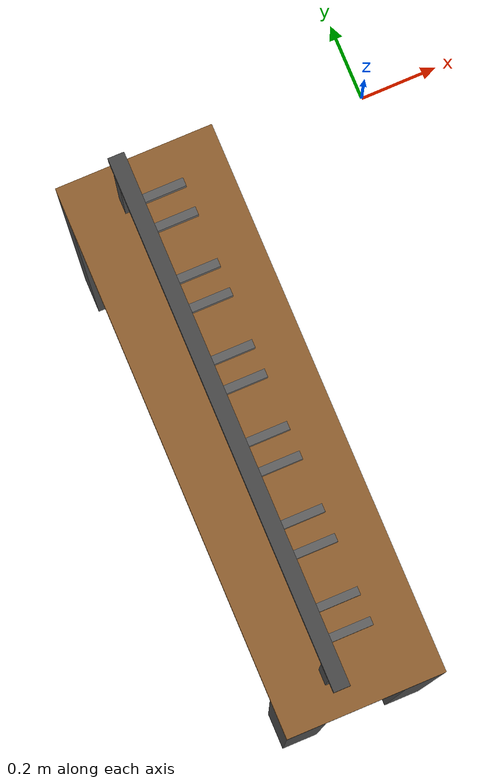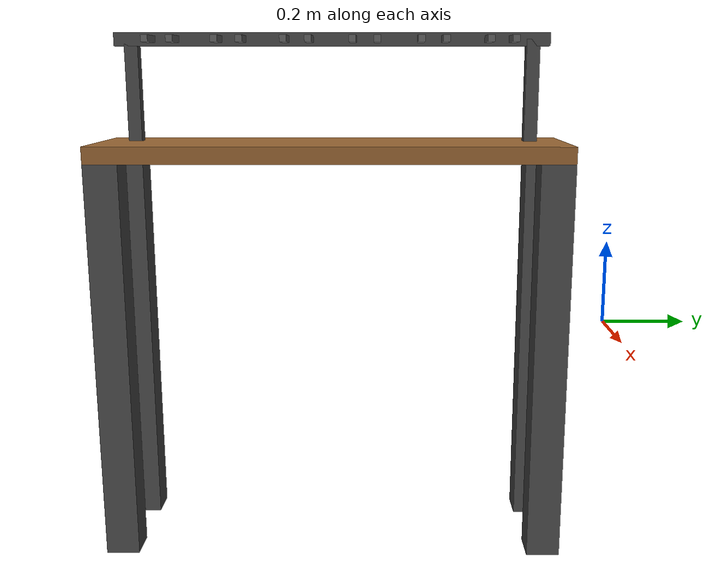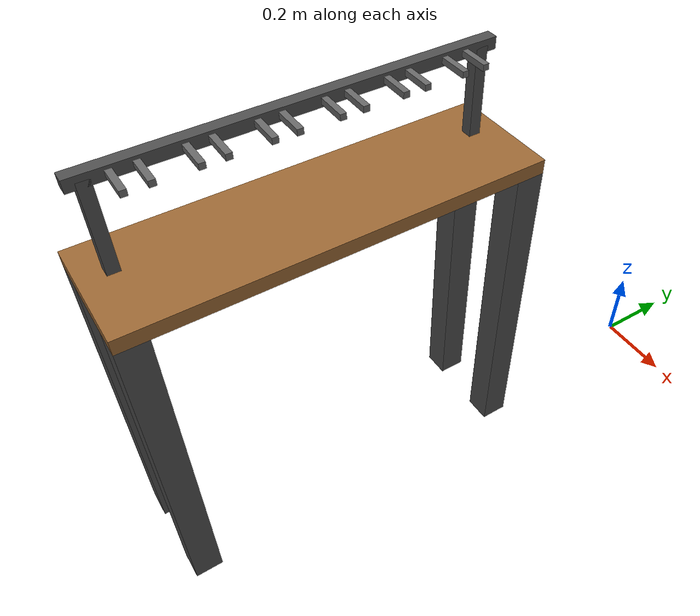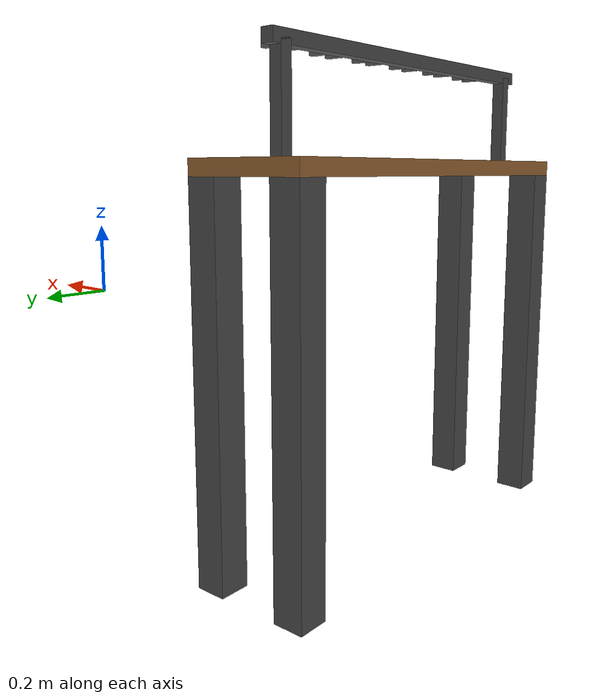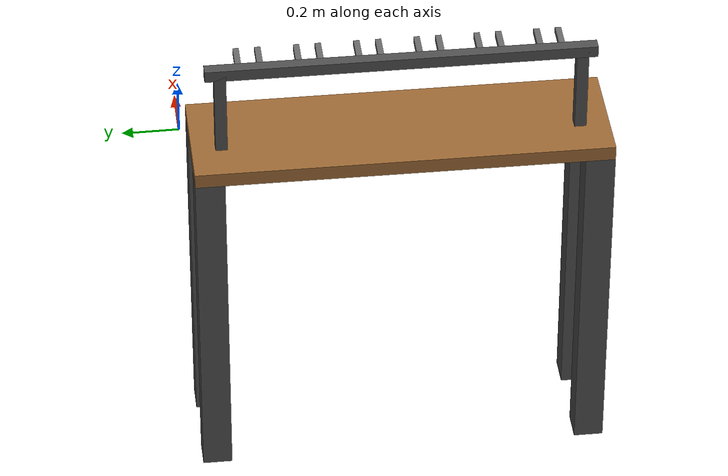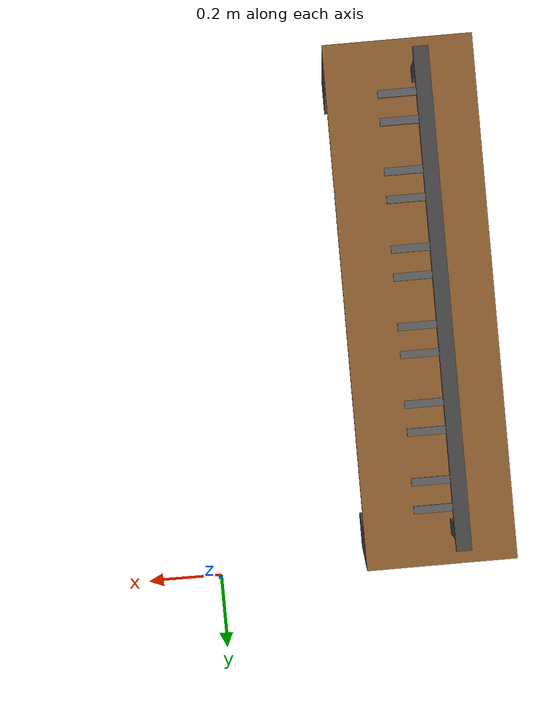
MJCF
<mujoco>
    <asset>
        <material name="rack_table_wood" rgba="0.6 0.4 0.2 1"/>
        <material name="rack_metal" rgba="0.3 0.3 0.3 1"/>
        <material name="fork_metal" rgba="0.4 0.4 0.4 1"/>
    </asset>
    <worldbody>
        <!-- The Tool Rack Station (Behind the robot) -->
        <!-- Floor is at z = -0.85 -->

        <!-- Table Top -->
        <!-- Center at z = 0.375, half-thickness 0.025 -> Surface is exactly at z = 0.40 -->
        <body name="tool_rack_table" pos="-0.6 -0.7 0.375">
            <geom type="box" size="0.2 0.7 0.025" material="rack_table_wood" contype="1" conaffinity="1"/>

            <!-- Table Legs (reaching down to z = -0.85) -->
            <!-- Distance from z=0.35 (bottom of table top) to z=-0.85 is 1.2m. Half size = 0.6. Center = -0.25 relative to origin? No, relative to table body (z=0.375) -->
            <!-- Local pos for leg center: -0.625 (so global is 0.375 - 0.625 = -0.25). Bottom is -0.25 - 0.6 = -0.85 -->
            <geom type="box" pos="-0.15 0.65 -0.625" size="0.05 0.05 0.6" material="rack_metal" contype="1" conaffinity="1"/>
            <geom type="box" pos="0.15 0.65 -0.625" size="0.05 0.05 0.6" material="rack_metal" contype="1" conaffinity="1"/>
            <geom type="box" pos="-0.15 -0.65 -0.625" size="0.05 0.05 0.6" material="rack_metal" contype="1" conaffinity="1"/>
            <geom type="box" pos="0.15 -0.65 -0.625" size="0.05 0.05 0.6" material="rack_metal" contype="1" conaffinity="1"/>
        </body>

        <!-- Rack Backbone (elevated above the table to let tools hang) -->
        <body name="tool_rack_backbone" pos="-0.65 -0.7 0.7">
            <!-- The main horizontal bar -->
            <geom type="box" size="0.02 0.65 0.02" material="rack_metal" contype="1" conaffinity="1"/>

            <!-- Supports connecting the backbone to the table surface -->
            <!-- Table surface is z=0.4. Backbone is z=0.7. Distance = 0.3. Half-size = 0.15. Center = 0.55 -->
            <geom type="box" pos="0 0.6 -0.15" size="0.02 0.02 0.15" material="rack_metal" contype="1" conaffinity="1"/>
            <geom type="box" pos="0 -0.6 -0.15" size="0.02 0.02 0.15" material="rack_metal" contype="1" conaffinity="1"/>

            <!-- Slot 1 for franka_hand -->
            <body name="rack_slot_franka_hand" pos="0 -0.5 0">
                <!-- Left Prong -->
                <!-- Extending towards the robot (+x direction) -->
                <geom type="box" pos="0.06 0.036 0" size="0.06 0.01 0.01" material="fork_metal" contype="1" conaffinity="1"/>
                <!-- Right Prong -->
                <geom type="box" pos="0.06 -0.036 0" size="0.06 0.01 0.01" material="fork_metal" contype="1" conaffinity="1"/>
            </body>

            <!-- Slot 2 for cobot_pump -->
            <body name="rack_slot_cobot_pump" pos="0 -0.3 0">
                <!-- Left Prong -->
                <!-- Extending towards the robot (+x direction) -->
                <geom type="box" pos="0.06 0.036 0" size="0.06 0.01 0.01" material="fork_metal" contype="1" conaffinity="1"/>
                <!-- Right Prong -->
                <geom type="box" pos="0.06 -0.036 0" size="0.06 0.01 0.01" material="fork_metal" contype="1" conaffinity="1"/>
            </body>

            <!-- Slot 3 for robotiq_2f85 -->
            <body name="rack_slot_robotiq_2f85" pos="0 -0.1 0">
                <!-- Left Prong -->
                <!-- Extending towards the robot (+x direction) -->
                <geom type="box" pos="0.06 0.036 0" size="0.06 0.01 0.01" material="fork_metal" contype="1" conaffinity="1"/>
                <!-- Right Prong -->
                <geom type="box" pos="0.06 -0.036 0" size="0.06 0.01 0.01" material="fork_metal" contype="1" conaffinity="1"/>
            </body>

            <!-- Slot 4 for allegro_hand -->
            <body name="rack_slot_allegro_hand" pos="0 0.1 0">
                <!-- Left Prong -->
                <!-- Extending towards the robot (+x direction) -->
                <geom type="box" pos="0.06 0.036 0" size="0.06 0.01 0.01" material="fork_metal" contype="1" conaffinity="1"/>
                <!-- Right Prong -->
                <geom type="box" pos="0.06 -0.036 0" size="0.06 0.01 0.01" material="fork_metal" contype="1" conaffinity="1"/>
            </body>

            <!-- Slot 5 for shadow_dex_ee -->
            <body name="rack_slot_shadow_dex_ee" pos="0 0.3 0">
                <!-- Left Prong -->
                <!-- Extending towards the robot (+x direction) -->
                <geom type="box" pos="0.06 0.036 0" size="0.06 0.01 0.01" material="fork_metal" contype="1" conaffinity="1"/>
                <!-- Right Prong -->
                <geom type="box" pos="0.06 -0.036 0" size="0.06 0.01 0.01" material="fork_metal" contype="1" conaffinity="1"/>
            </body>

            <!-- Slot 6 for power_drill -->
            <body name="rack_slot_power_drill" pos="0 0.5 0">
                <!-- Left Prong -->
                <!-- Extending towards the robot (+x direction) -->
                <geom type="box" pos="0.06 0.036 0" size="0.06 0.01 0.01" material="fork_metal" contype="1" conaffinity="1"/>
                <!-- Right Prong -->
                <geom type="box" pos="0.06 -0.036 0" size="0.06 0.01 0.01" material="fork_metal" contype="1" conaffinity="1"/>
            </body>
        </body>
    </worldbody>
</mujoco>
